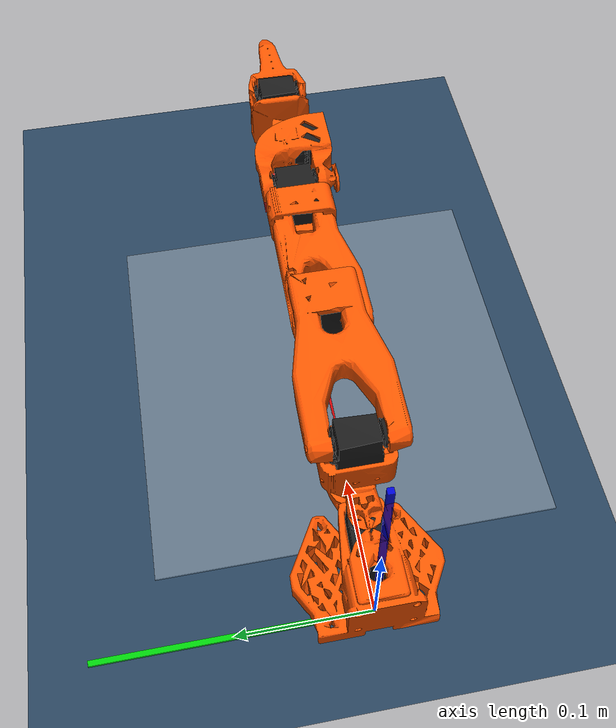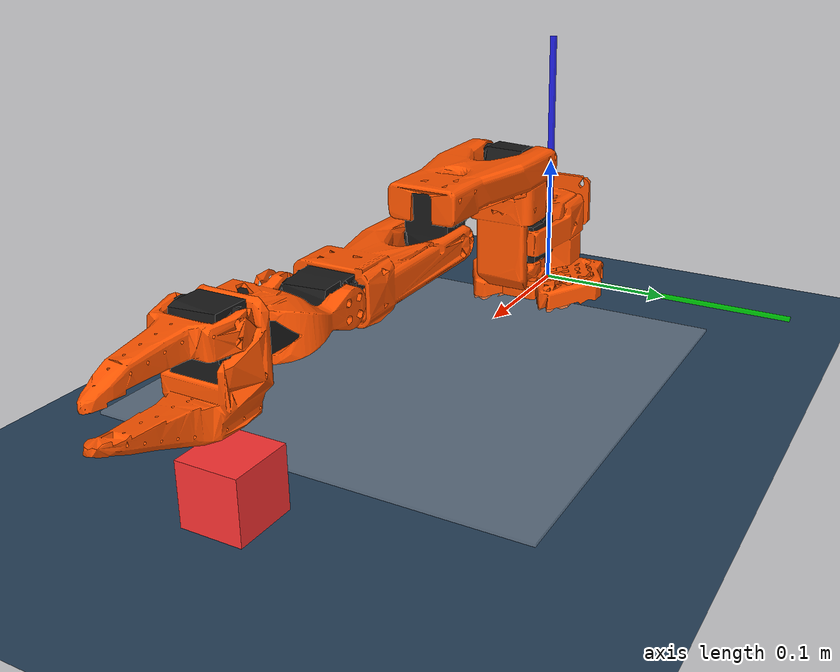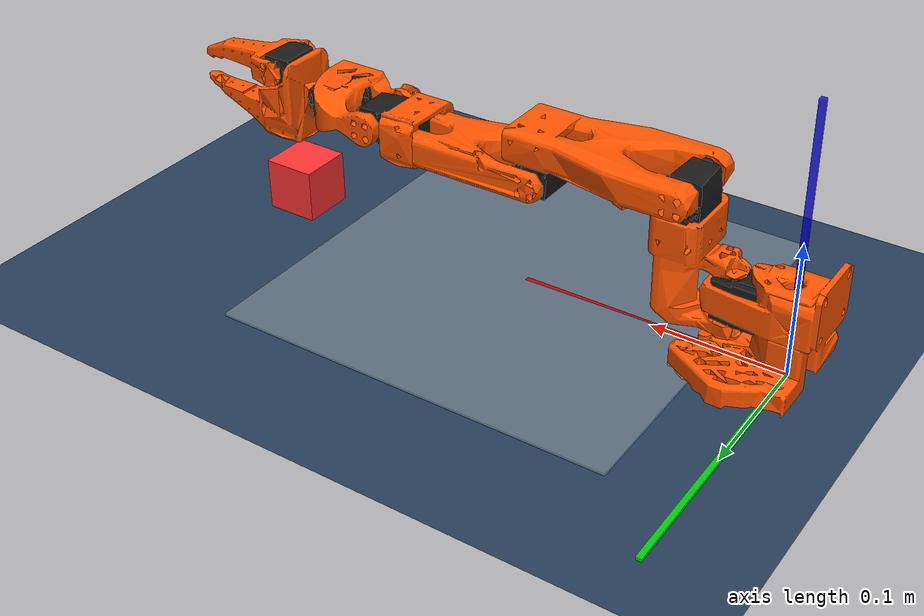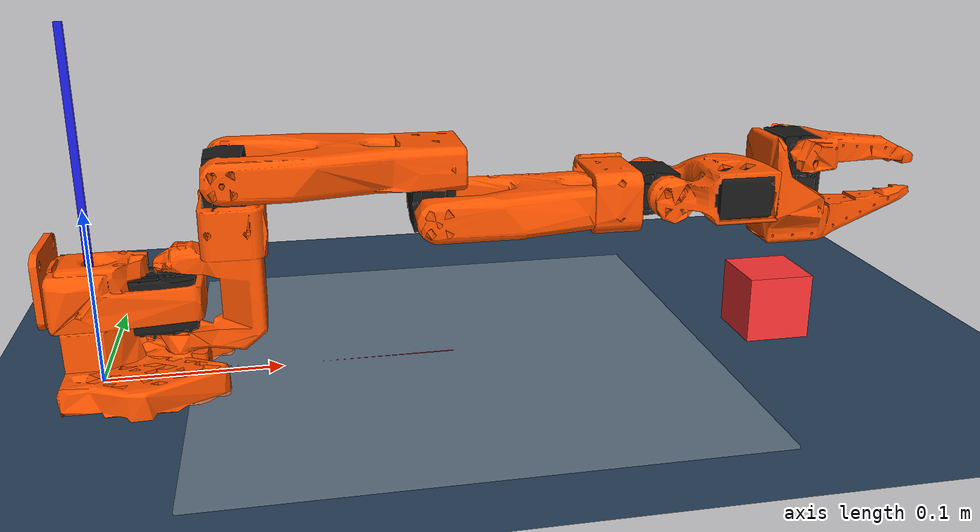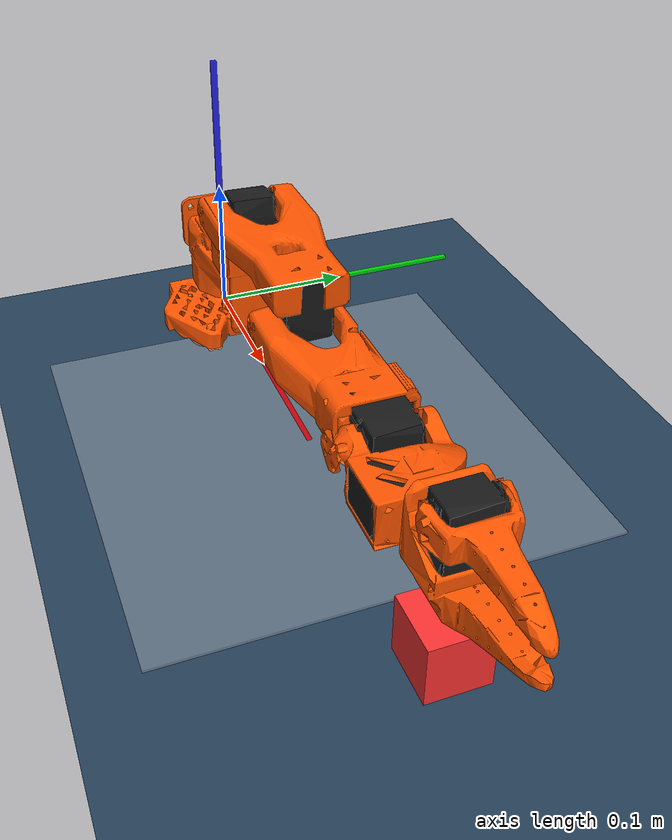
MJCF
<mujoco model="so_arm100_scene">
  <include file="so_100.xml"/>

  <!-- 🔧 增加内存分配配置，解决内存错误 -->
  <size nconmax="2000" njmax="4000" nstack="1200000"/>
  <option cone="elliptic" impratio="10">
    <flag constraint="enable" energy="enable" fwdinv="enable"/>
  </option>

  <statistic center="0 -0.2 0.1" extent="0.4"/>

  <visual>
    <headlight diffuse="0.6 0.6 0.6" ambient="0.3 0.3 0.3" specular="0 0 0"/>
    <rgba haze="0.15 0.25 0.35 1"/>
    <global azimuth="140" elevation="-30"/>
  </visual>

  <asset>
    <texture type="skybox" builtin="gradient" rgb1="0.3 0.5 0.7" rgb2="0 0 0" width="512" height="3072"/>
    <texture type="2d" name="groundplane" builtin="checker" mark="edge" rgb1="0.2 0.3 0.4" rgb2="0.1 0.2 0.3"
      markrgb="0.8 0.8 0.8" width="300" height="300"/>
    <material name="groundplane" texture="groundplane" texuniform="true" texrepeat="5 5" reflectance="0.2"/>
    <material name="red_material" rgba="1.0 0.2 0.2 1.0" specular="0.3" shininess="0.3"/>
  </asset>

  <worldbody>
    <light pos="0 0 1.5" dir="0 0 -1" directional="true"/>
    <geom name="floor" size="0 0 0.05" type="plane" material="groundplane"/>

    <!-- 红色立方体用于IK测试 -->
    <body name="RedCube" pos="0.4 0.0 0.02" quat="1 0 0 0">
      <joint name="RedCube" type="free" />
      <geom name="RedCube" type="box" size="0.02 0.02 0.02" material="red_material"
            condim="6" friction="1 0.5 0.005" density="1000"/>
      <inertial pos="0 0 0" mass="0.1" diaginertia="0.001 0.001 0.001"/>
    </body>

    <!-- 世界坐标系显示 -->
    <body name="WorldAxes" pos="0 0 0">
      <geom type="box" size="0.1 0.002 0.002" pos="0.1 0 0" rgba="1 0 0 0.8"/>
      <geom type="box" size="0.002 0.1 0.002" pos="0 0.1 0" rgba="0 1 0 0.8"/>
      <geom type="box" size="0.002 0.002 0.1" pos="0 0 0.1" rgba="0 0 1 0.8"/>
    </body>

    <!-- 简单的工作区域标记 -->
    <body name="WorkspaceMarker" pos="0.2 0.0 0.001" quat="1 0 0 0">
      <geom type="box" size="0.15 0.15 0.001" rgba="0.9 0.9 0.9 0.3"
            contype="0" conaffinity="0"/>
    </body>
  </worldbody>

  <keyframe>
    <key name="scene_home" qpos="0.00000 -1.57079 1.57079 0.00000 0.00000 0.00000 0.00000 0.00000 0.00000 0.00000 0.00000 0.00000 0.00000"
         ctrl="0.00000 -1.57079 1.57079 0.00000 0.00000 0.00000"/>
  </keyframe>
</mujoco>

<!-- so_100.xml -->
<mujoco model="so_arm100">
  <compiler angle="radian" meshdir="assets/"/>

  <option cone="elliptic" impratio="10"/>

  <asset>
    <material name="orange" rgba="1.0 0.331 0.0 1.0" specular="0.1" shininess="0.1"/>
    <material name="black" rgba="0.1 0.1 0.1 1.0" specular="0.1" shininess="0.1"/>

    <mesh name="Base" file="Base.stl"/>
    <mesh name="Base_Motor" file="Base_Motor.stl"/>
    <mesh name="Rotation_Pitch" file="Rotation_Pitch.stl"/>
    <mesh name="Rotation_Pitch_Motor" file="Rotation_Pitch_Motor.stl"/>
    <mesh name="Upper_Arm" file="Upper_Arm.stl"/>
    <mesh name="Upper_Arm_Motor" file="Upper_Arm_Motor.stl"/>
    <mesh name="Lower_Arm" file="Lower_Arm.stl"/>
    <mesh name="Lower_Arm_Motor" file="Lower_Arm_Motor.stl"/>
    <mesh name="Wrist_Pitch_Roll" file="Wrist_Pitch_Roll.stl"/>
    <mesh name="Wrist_Pitch_Roll_Motor" file="Wrist_Pitch_Roll_Motor.stl"/>
    <mesh name="Fixed_Jaw" file="Fixed_Jaw.stl"/>
    <mesh name="Fixed_Jaw_Motor" file="Fixed_Jaw_Motor.stl"/>
    <mesh name="Fixed_Jaw_Collision_1" file="Fixed_Jaw_Collision_1.stl"/>
    <mesh name="Fixed_Jaw_Collision_2" file="Fixed_Jaw_Collision_2.stl"/>
    <mesh name="Moving_Jaw" file="Moving_Jaw.stl"/>
    <mesh name="Moving_Jaw_Collision_1" file="Moving_Jaw_Collision_1.stl"/>
    <mesh name="Moving_Jaw_Collision_2" file="Moving_Jaw_Collision_2.stl"/>
    <mesh name="Moving_Jaw_Collision_3" file="Moving_Jaw_Collision_3.stl"/>
  </asset>

  <default>
    <default class="so_arm100">
      <joint frictionloss="0.2" armature="0.2"/>
      <position kp="80" dampratio="1.5" forcerange="-80 80" ctrlrange="-3.14158 3.14158"/>
      <default class="Rotation">
        <joint axis="0 1 0" range="-2.2 2.2"/>
        <position kp="300" dampratio="2.0" forcerange="-400 400"/>
      </default>
      <default class="Pitch">
        <joint axis="1 0 0" range="-3.14158 0.2"/>
        <position kp="1200" dampratio="3.0" forcerange="-800 800"/>
      </default>
      <default class="Elbow">
        <joint axis="1 0 0" range="0 3.14158"/>
        <position kp="800" dampratio="2.5" forcerange="-600 600"/>
      </default>
      <default class="Wrist_Pitch">
        <joint axis="1 0 0" range="-2.0 1.8"/>
        <position kp="400" dampratio="2.0" forcerange="-300 300"/>
      </default>
      <default class="Wrist_Roll">
        <joint axis="0 1 0" range="-3.14158 3.14158"/>
        <position kp="50" dampratio="1.2" forcerange="-60 60"/>
      </default>
      <default class="Jaw">
        <joint axis="0 0 1" range="-0.2 2.0"/>
        <position kp="30" dampratio="1.0" forcerange="-40 40"/>
      </default>
      <default class="visual">
        <geom type="mesh" contype="0" conaffinity="0" density="0" group="2" material="orange"/>
        <default class="motor_visual">
          <geom material="black"/>
        </default>
      </default>
      <default class="collision">
        <geom group="3" type="mesh"/>
        <default class="finger_collision">
          <geom type="box" solimp="2 1 0.01" solref="0.01 1" friction="1 0.005 0.0001"/>
        </default>
      </default>
    </default>
  </default>

  <worldbody>
    <body name="Base" pos="0.0 0.0 0.0" quat="1 0 0 1" childclass="so_arm100">
      <geom type="mesh" mesh="Base" class="visual"/>
      <geom type="mesh" mesh="Base_Motor" class="motor_visual"/>
      <geom type="mesh" mesh="Base" class="collision"/>
      <body name="Rotation_Pitch" pos="0 -0.0452 0.0165" quat="0.707105 0.707108 0 0">
        <inertial pos="-9.07886e-05 0.0590972 0.031089" quat="0.363978 0.441169 -0.623108 0.533504" mass="0.119226"
          diaginertia="5.94278e-05 5.89975e-05 3.13712e-05"/>
        <joint name="Rotation" class="Rotation"/>
        <geom type="mesh" mesh="Rotation_Pitch" class="visual"/>
        <geom type="mesh" mesh="Rotation_Pitch_Motor" class="motor_visual"/>
        <geom type="mesh" mesh="Rotation_Pitch" class="collision"/>
        <body name="Upper_Arm" pos="0 0.1025 0.0306" euler="1.57079 0 0">
          <inertial pos="-1.72052e-05 0.0701802 0.00310545" quat="0.50104 0.498994 -0.493562 0.50632" mass="0.162409"
            diaginertia="0.000213312 0.000167164 7.01522e-05"/>
          <joint name="Pitch" class="Pitch"/>
          <geom type="mesh" mesh="Upper_Arm" class="visual"/>
          <geom type="mesh" mesh="Upper_Arm_Motor" class="motor_visual"/>
          <geom type="mesh" mesh="Upper_Arm" class="collision"/>
          <body name="Lower_Arm" pos="0 0.11257 0.028" euler="-1.57079 0 0">
            <inertial pos="-0.00339604 0.00137796 0.0768007" quat="0.701995 0.0787996 0.0645626 0.704859"
              mass="0.147968" diaginertia="0.000138803 0.000107748 4.84242e-05"/>
            <joint name="Elbow" class="Elbow"/>
            <geom type="mesh" mesh="Lower_Arm" class="visual"/>
            <geom type="mesh" mesh="Lower_Arm_Motor" class="motor_visual"/>
            <geom type="mesh" mesh="Lower_Arm" class="collision"/>
            <body name="Wrist_Pitch_Roll" pos="0 0.0052 0.1349" euler="-1.57079 0 0">
              <inertial pos="-0.00852653 -0.0352279 -2.34622e-05" quat="-0.0522806 0.705235 0.0549524 0.704905"
                mass="0.0661321" diaginertia="3.45403e-05 2.39041e-05 1.94704e-05"/>
              <joint name="Wrist_Pitch" class="Wrist_Pitch"/>
              <geom type="mesh" mesh="Wrist_Pitch_Roll" class="visual"/>
              <geom type="mesh" mesh="Wrist_Pitch_Roll_Motor" class="motor_visual"/>
              <geom type="mesh" mesh="Wrist_Pitch_Roll" class="collision"/>
              <body name="Fixed_Jaw" pos="0 -0.0601 0" euler="0 1.57079 0">
                <inertial pos="0.00552377 -0.0280167 0.000483583" quat="0.41836 0.620891 -0.350644 0.562599"
                  mass="0.0929859" diaginertia="5.03136e-05 4.64098e-05 2.72961e-05"/>
                <joint name="Wrist_Roll" class="Wrist_Roll"/>
                <geom type="mesh" mesh="Fixed_Jaw" class="visual"/>
                <geom type="mesh" mesh="Fixed_Jaw_Motor" class="motor_visual"/>
                <geom type="mesh" mesh="Fixed_Jaw_Collision_1" class="collision"/>
                <geom type="mesh" mesh="Fixed_Jaw_Collision_2" class="collision"/>
                <geom class="finger_collision" name="fixed_jaw_pad_1" size="0.001 0.005 0.004" pos="0.0089 -0.1014 0"/>
                <geom class="finger_collision" name="fixed_jaw_pad_2" size="0.001 0.005 0.006" pos="0.0109 -0.0914 0"/>
                <geom class="finger_collision" name="fixed_jaw_pad_3" size="0.001 0.01 0.007" pos="0.0126 -0.0768 0"/>
                <geom class="finger_collision" name="fixed_jaw_pad_4" size="0.001 0.01 0.008" pos="0.0143 -0.0572 0"/>
                <body name="Moving_Jaw" pos="-0.0202 -0.0244 0" quat="1.34924e-11 -3.67321e-06 1 -3.67321e-06">
                  <inertial pos="-0.00161745 -0.0303473 0.000449646" quat="0.696562 0.716737 -0.0239844 -0.0227026"
                    mass="0.0202444" diaginertia="1.11265e-05 8.99651e-06 2.99548e-06"/>
                  <joint name="Jaw" class="Jaw"/>
                  <geom type="mesh" mesh="Moving_Jaw" class="visual"/>
                  <geom type="mesh" mesh="Moving_Jaw_Collision_1" class="collision"/>
                  <geom type="mesh" mesh="Moving_Jaw_Collision_2" class="collision"/>
                  <geom type="mesh" mesh="Moving_Jaw_Collision_3" class="collision"/>
                  <geom class="finger_collision" name="moving_jaw_pad_1" size="0.001 0.005 0.004" pos="-0.0113 -0.077 0"/>
                  <geom class="finger_collision" name="moving_jaw_pad_2" size="0.001 0.005 0.006" pos="-0.0093 -0.067 0"/>
                  <geom class="finger_collision" name="moving_jaw_pad_3" size="0.001 0.01 0.006" pos="-0.0073 -0.055 0"/>
                  <geom class="finger_collision" name="moving_jaw_pad_4" size="0.001 0.01 0.008" pos="-0.0073 -0.035 0"/>
                </body>
              </body>
            </body>
          </body>
        </body>
      </body>
    </body>
  </worldbody>

  <actuator>
    <position class="Rotation" name="Rotation" joint="Rotation"/>
    <position class="Pitch" name="Pitch" joint="Pitch"/>
    <position class="Elbow" name="Elbow" joint="Elbow"/>
    <position class="Wrist_Pitch" name="Wrist_Pitch" joint="Wrist_Pitch"/>
    <position class="Wrist_Roll" name="Wrist_Roll" joint="Wrist_Roll"/>
    <position class="Jaw" name="Jaw" joint="Jaw"/>
  </actuator>

  <contact>
    <exclude body1="Base" body2="Rotation_Pitch"/>
  </contact>

</mujoco>
